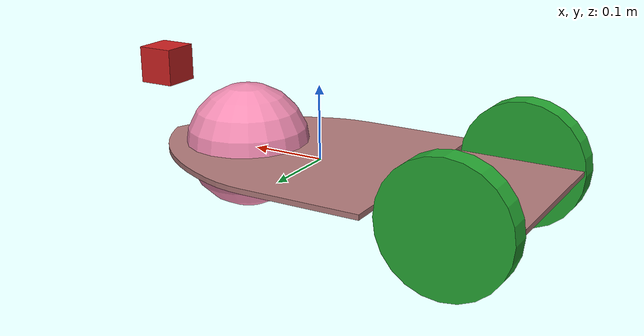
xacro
<?xml version="1.0" ?>
<robot name="m2wr" xmlns:xacro="http://www.ros.org/wiki/xacro">

  <xacro:include filename="$(find m2wr_description)/urdf/materials.xacro" />
  <xacro:include filename="$(find m2wr_description)/urdf/m2wr.gazebo" />
  <xacro:include filename="$(find m2wr_description)/urdf/macros.xacro" />

  <link name="link_chassis">
    <!-- pose and inertial -->
    <pose>0 0 0 0 0 0</pose>
    <inertial>
      <mass value="0.5"/>
      <origin rpy="0  0 -1.57079632679" xyz="0  -0.025 0"/>
      <inertia ixx="0.083" ixy="0" ixz="0" iyy="0.083" iyz="0" izz="0.083"/>
    </inertial>
    <!-- body -->
    <collision name="collision_chassis">
      <origin rpy="0  0 -1.57079632679" xyz="-0.32 ${0.18-0.025} 0"/>
      <geometry>
       <mesh filename="package://m2wr_description/meshes/chassis.dae"  scale="0.0035 0.0035 0.0035"/>

      </geometry>
    </collision>
    <visual>
      <origin rpy="0  0 -1.57079632679" xyz="-0.32 ${0.18-0.025} 0"/>
      <geometry>
         <mesh filename="package://m2wr_description/meshes/chassis.dae"  scale="0.0035 0.0035 0.0035"/>
      </geometry>
       <material name="pink"/>
    </visual>
    <!-- caster front -->

   <collision name="caster_front_collision">
      <origin rpy=" 0 0 0" xyz="0.12 -0.015 -0"/>
      <geometry>
        <sphere radius="0.085"/>
      </geometry>
      <surface>
        <friction>
          <ode>
            <mu>0</mu>
            <mu2>0</mu2>
            <slip1>1.0</slip1>
            <slip2>1.0</slip2>
          </ode>
        </friction>
      </surface>
    </collision>
    <visual name="caster_front_visual">

      <origin rpy=" 0 0 0" xyz="0.12 -0.0075 -0"/>
      <geometry>
        <sphere radius="0.085"/>
      </geometry>

    </visual>
  </link>

 <link name="camera_link">
    <collision>
      <origin xyz="0.125 0 0.05" rpy="0 0 0"/>
      <geometry>
    <box size="0.05 0.05 0.05"/>
      </geometry>
    </collision>

    <visual>
      <origin xyz="0.125 0 0.05" rpy="0 0 0"/>
      <geometry>
    <box size="0.05 0.05 0.05"/>
      </geometry>
      <material name="red"/>
    </visual>

    <inertial>
      <mass value="0.05" />
      <origin xyz="0.125 0 0.05 " rpy="0 0 0"/>
      <inertia ixx="1e-6" ixy="0" ixz="0" iyy="1e-6" iyz="0" izz="1e-6" />
    </inertial>
  </link>

    <joint name="camera_joint" type="fixed">
    <axis xyz="0.05 0  0.05" />
    <origin xyz="0.125 0 0.05" rpy="0 0 0"/>
    <parent link="link_chassis"/>
    <child link="camera_link"/>
  </joint>

 <xacro:link_wheel name="link_right_wheel" />
  <xacro:joint_wheel name="joint_right_wheel" child="link_right_wheel" origin_xyz="-0.2375 -0.1225 0" />

 <xacro:link_wheel name="link_left_wheel" />
  <xacro:joint_wheel name="joint_left_wheel" child="link_left_wheel" origin_xyz="-0.2375 0.1225 0" />
</robot>

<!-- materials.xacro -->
<robot xmlns:xacro="http://www.ros.org/wiki/xacro">
  <material name="black">
    <color rgba="0.0 0.0 0.0 1.0"/>
  </material>
  <material name="blue">
    <color rgba="0.203125 0.23828125 0.28515625 1.0"/>
  </material>
  <material name="green">
    <color rgba="0.0 0.8 0.0 1.0"/>
  </material>
  <material name="grey">
    <color rgba="0.2 0.2 0.2 1.0"/>
  </material>
  <material name="orange">
    <color rgba="1.0 0.423529411765 0.0392156862745 1.0"/>
  </material>
  <material name="brown">
    <color rgba="0.870588235294 0.811764705882 0.764705882353 1.0"/>
  </material>
  <material name="red">
    <color rgba="0.80078125 0.12890625 0.1328125 1.0"/>
  </material>
  <material name="greygreen">
    <color rgba="0.537254902 0.615686275 0.470588235 1.0"/>
  </material>
    <material name="aqua">
    <color rgba="0.380392157 0.494117647 0.454901961 1.0"/>
  </material>
    <material name="pink">
    <color rgba="0.694117647 0.478431373 0.478431373 1.0"/>
  </material>
</robot>

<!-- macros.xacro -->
<robot xmlns:xacro="http://www.ros.org/wiki/xacro">
 <xacro:macro name="link_wheel" params="name">
        <link name="${name}">
            <inertial>
              <mass value="5"/>
              <origin rpy="0 1.5707 1.5707" xyz="0 0 0"/>
              <inertia ixx="${(3*0.085*0.085+0.055*0.03)/12}" ixy="0" ixz="0" iyy="${(3*0.085*0.085+0.03*0.03)/12}" iyz="0" izz="${(0.085*0.085)/2}"/>
            </inertial>
            <collision name="link_right_wheel_collision">
              <origin rpy="0 1.5707 1.5707" xyz="0.0 0 0"/>
              <geometry>
              <cylinder radius="0.085" length="0.03"/>-->
              = </geometry>
            </collision>
            <visual name="${name}_visual">
              <origin rpy="0 1.5707 1.5707" xyz="0.0 0 0"/>
              <geometry>
              <cylinder radius="0.085" length="0.03"/>

              </geometry>
            </visual>
        </link>
    </xacro:macro>

    <xacro:macro name="joint_wheel" params="name child origin_xyz">
      <joint name="${name}" type="continuous">
        <origin rpy="0 0 0" xyz="${origin_xyz}"/>
        <child link="${child}"/>
        <parent link="link_chassis"/>
        <axis rpy="0 0 0" xyz="0 1 0"/>
        <limit effort="10000" velocity="1000"/>
        <joint_properties damping="0" friction="0"/>
      </joint>
    </xacro:macro>

    <xacro:macro name="cylinder_inertia" params="mass r l">
      <inertia  ixx="${mass*(3*r*r+l*l)/12}" ixy = "0" ixz = "0"
                iyy="${mass*(3*r*r+l*l)/12}" iyz = "0"
                izz="${mass*(r*r)/2}" />
    </xacro:macro>
</robot>
